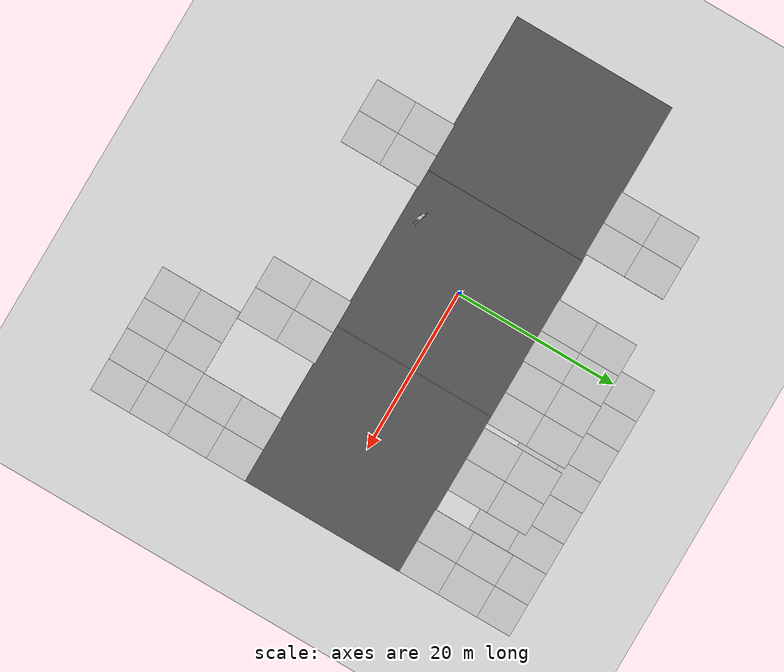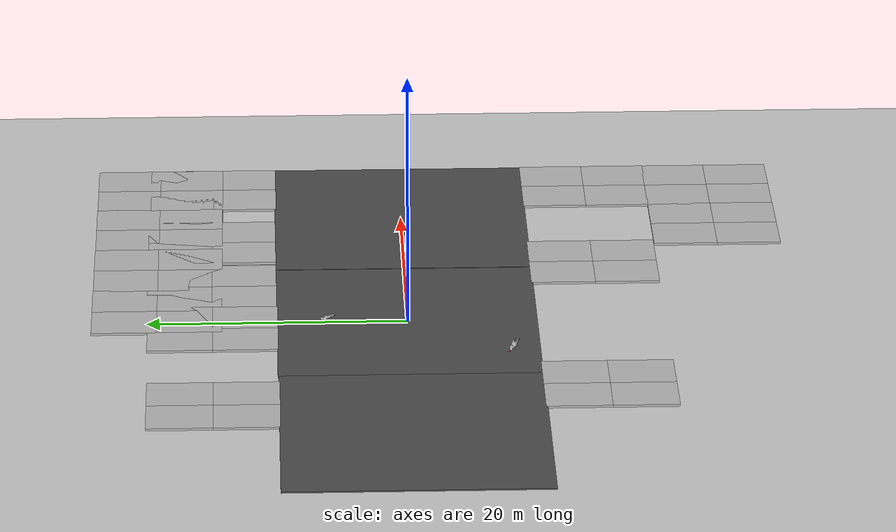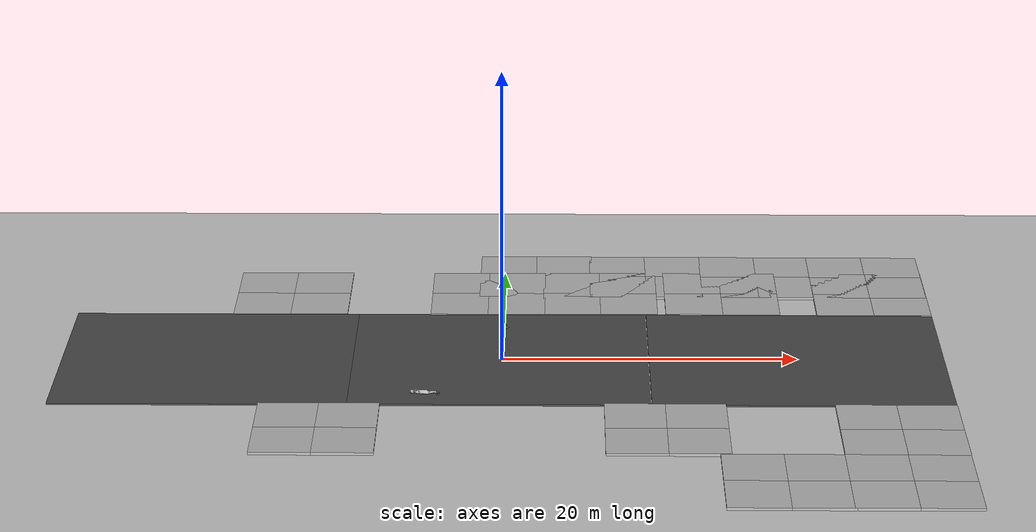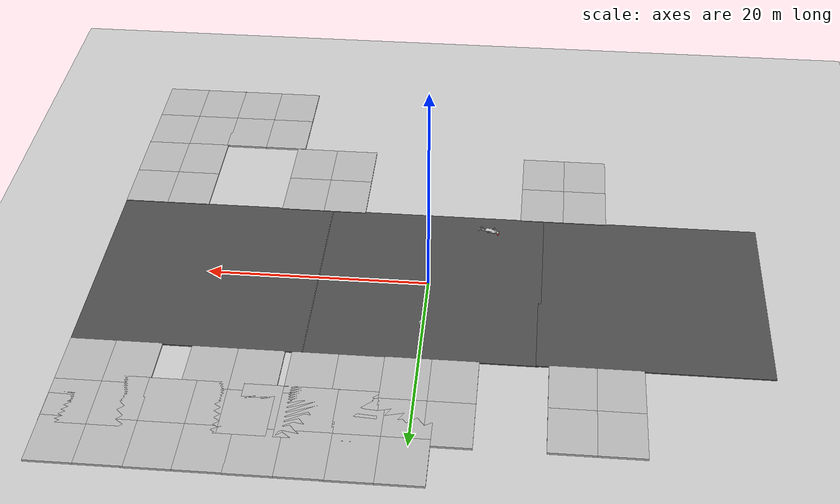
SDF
<sdf version="1.7">
 <world name="default">
  <light name="sun" type="directional">
   <pose>0 0 10 0 -0 0</pose>
   <diffuse>0.8 0.8 0.8 1</diffuse>
   <specular>0.2 0.2 0.2 1</specular>
   <attenuation>
    <range>1000</range>
    <constant>0.9</constant>
    <linear>0.01</linear>
    <quadratic>0.001</quadratic>
   </attenuation>
   <direction>-0.5 0.1 -0.9</direction>
   <spot><inner_angle>0</inner_angle><outer_angle>0</outer_angle><falloff>0</falloff></spot>
  </light>
  <model name="ground_plane">
   <static>1</static>
   <link name="link">
    <collision name="collision">
     <geometry><plane><normal>0 0 1</normal><size>100 100</size></plane></geometry>
     <surface>
      <contact><collide_bitmask>65535</collide_bitmask></contact>
      <friction><ode><mu>100</mu><mu2>50</mu2></ode></friction>
     </surface>
    </collision>
    <visual name="visual">
     <cast_shadows>0</cast_shadows>
     <geometry><plane><normal>0 0 1</normal><size>100 100</size></plane></geometry>
     <material>
      <script><uri>file://media/materials/scripts/gazebo.material</uri><name>Gazebo/Grey</name></script>
     </material>
    </visual>
   </link>
  </model>
  <gravity>0 0 -9.8</gravity>
  <magnetic_field>6e-06 2.3e-05 -4.2e-05</magnetic_field>
  <atmosphere type="adiabatic"/>
  <physics type="ode">
   <max_step_size>0.001</max_step_size>
   <real_time_factor>1</real_time_factor>
   <real_time_update_rate>1000</real_time_update_rate>
  </physics>
  <scene><ambient>0.4 0.4 0.4 1</ambient><background>0.7 0.7 0.7 1</background><shadows>1</shadows></scene>
  <audio><device>default</device></audio>
  <spherical_coordinates>
   <surface_model>EARTH_WGS84</surface_model>
   <latitude_deg>0</latitude_deg>
   <longitude_deg>0</longitude_deg>
   <elevation>0</elevation>
   <heading_deg>0</heading_deg>
  </spherical_coordinates>
  <light name="user_directional_light_0" type="directional">
   <pose>-36.339 -0.823859 1 0 -0 0</pose>
   <diffuse>0.5 0.5 0.5 1</diffuse>
   <specular>0.1 0.1 0.1 1</specular>
   <direction>0.1 0.1 -0.9</direction>
   <attenuation>
    <range>20</range>
    <constant>0.5</constant>
    <linear>0.01</linear>
    <quadratic>0.001</quadratic>
   </attenuation>
   <spot><inner_angle>0</inner_angle><outer_angle>0</outer_angle><falloff>0</falloff></spot>
  </light>
  <light name="user_directional_light_1" type="directional">
   <pose>-35.6496 -23.8904 1 0 -0 0</pose>
   <diffuse>0.5 0.5 0.5 1</diffuse>
   <specular>0.1 0.1 0.1 1</specular>
   <direction>0.1 0.1 -0.9</direction>
   <attenuation>
    <range>20</range>
    <constant>0.5</constant>
    <linear>0.01</linear>
    <quadratic>0.001</quadratic>
   </attenuation>
   <spot><inner_angle>0</inner_angle><outer_angle>0</outer_angle><falloff>0</falloff></spot>
  </light>
  <light name="user_directional_light_2" type="directional">
   <pose>-36.7118 23.8232 1 0 -0 0</pose>
   <diffuse>0.5 0.5 0.5 1</diffuse>
   <specular>0.1 0.1 0.1 1</specular>
   <direction>0.1 0.1 -0.9</direction>
   <attenuation>
    <range>20</range>
    <constant>0.5</constant>
    <linear>0.01</linear>
    <quadratic>0.001</quadratic>
   </attenuation>
   <spot><inner_angle>0</inner_angle><outer_angle>0</outer_angle><falloff>0</falloff></spot>
  </light>
  <light name="user_directional_light_3" type="directional">
   <pose>-37.7425 41.264 1 0 -0 0</pose>
   <diffuse>0.5 0.5 0.5 1</diffuse>
   <specular>0.1 0.1 0.1 1</specular>
   <direction>0.1 0.1 -0.9</direction>
   <attenuation>
    <range>20</range>
    <constant>0.5</constant>
    <linear>0.01</linear>
    <quadratic>0.001</quadratic>
   </attenuation>
   <spot><inner_angle>0</inner_angle><outer_angle>0</outer_angle><falloff>0</falloff></spot>
  </light>
  <light name="user_directional_light_4" type="directional">
   <pose>-35.2611 -40.816 1 0 -0 0</pose>
   <diffuse>0.5 0.5 0.5 1</diffuse>
   <specular>0.1 0.1 0.1 1</specular>
   <direction>0.1 0.1 -0.9</direction>
   <attenuation>
    <range>20</range>
    <constant>0.5</constant>
    <linear>0.01</linear>
    <quadratic>0.001</quadratic>
   </attenuation>
   <spot><inner_angle>0</inner_angle><outer_angle>0</outer_angle><falloff>0</falloff></spot>
  </light>
  <light name="user_directional_light_5" type="directional">
   <pose>24.3188 39.8421 1 0 -0 0</pose>
   <diffuse>0.5 0.5 0.5 1</diffuse>
   <specular>0.1 0.1 0.1 1</specular>
   <direction>0.1 0.1 -0.9</direction>
   <attenuation>
    <range>20</range>
    <constant>0.5</constant>
    <linear>0.01</linear>
    <quadratic>0.001</quadratic>
   </attenuation>
   <spot><inner_angle>0</inner_angle><outer_angle>0</outer_angle><falloff>0</falloff></spot>
  </light>
  <light name="user_directional_light_6" type="directional">
   <pose>24.445 -29.3222 1 0 -0 0</pose>
   <diffuse>0.5 0.5 0.5 1</diffuse>
   <specular>0.1 0.1 0.1 1</specular>
   <direction>0.1 0.1 -0.9</direction>
   <attenuation>
    <range>20</range>
    <constant>0.5</constant>
    <linear>0.01</linear>
    <quadratic>0.001</quadratic>
   </attenuation>
   <spot><inner_angle>0</inner_angle><outer_angle>0</outer_angle><falloff>0</falloff></spot>
  </light>
  <model name="asphalt_plane">
   <static>1</static>
   <link name="link">
    <collision name="collision"><geometry><box><size>20 20 0.1</size></box></geometry></collision>
    <visual name="visual">
     <cast_shadows>0</cast_shadows>
     <geometry><box><size>20 20 0.1</size></box></geometry>
     <material>
      <script>
       <uri>model://asphalt_plane/materials/scripts</uri>
       <uri>model://asphalt_plane/materials/textures</uri>
       <name>vrc/asphalt</name>
      </script>
     </material>
    </visual>
   </link>
   <pose>-0.105189 0.034839 0 0 -0 0</pose>
  </model>
  <model name="asphalt_plane_0">
   <static>1</static>
   <link name="link">
    <collision name="collision"><geometry><box><size>20 20 0.1</size></box></geometry></collision>
    <visual name="visual">
     <cast_shadows>0</cast_shadows>
     <geometry><box><size>20 20 0.1</size></box></geometry>
     <material>
      <script>
       <uri>model://asphalt_plane/materials/scripts</uri>
       <uri>model://asphalt_plane/materials/textures</uri>
       <name>vrc/asphalt</name>
      </script>
     </material>
    </visual>
   </link>
   <pose>19.9584 0.020413 0 0 -0 0</pose>
  </model>
  <model name="asphalt_plane_1">
   <static>1</static>
   <link name="link">
    <collision name="collision"><geometry><box><size>20 20 0.1</size></box></geometry></collision>
    <visual name="visual">
     <cast_shadows>0</cast_shadows>
     <geometry><box><size>20 20 0.1</size></box></geometry>
     <material>
      <script>
       <uri>model://asphalt_plane/materials/scripts</uri>
       <uri>model://asphalt_plane/materials/textures</uri>
       <name>vrc/asphalt</name>
      </script>
     </material>
    </visual>
   </link>
   <pose>-19.8343 -0.008116 0 0 -0 0</pose>
  </model>
  <model name="mud_box">
   <static>1</static>
   <link name="link">
    <collision name="collision"><geometry><box><size>8 10 0.2</size></box></geometry></collision>
    <visual name="visual_1">
     <pose>-2 2.5 0 0 -0 0</pose>
     <cast_shadows>0</cast_shadows>
     <geometry><box><size>4 5 0.2</size></box></geometry>
     <material>
      <script>
       <uri>model://mud_box/materials/scripts</uri>
       <uri>model://mud_box/materials/textures</uri>
       <name>vrc/mud</name>
      </script>
     </material>
    </visual>
    <visual name="visual_2">
     <pose>2 2.5 0 0 -0 0</pose>
     <cast_shadows>0</cast_shadows>
     <geometry><box><size>4 5 0.2</size></box></geometry>
     <material>
      <script>
       <uri>model://mud_box/materials/scripts</uri>
       <uri>model://mud_box/materials/textures</uri>
       <name>vrc/mud</name>
      </script>
     </material>
    </visual>
    <visual name="visual_3">
     <pose>2 -2.5 0 0 -0 0</pose>
     <cast_shadows>0</cast_shadows>
     <geometry><box><size>4 5 0.2</size></box></geometry>
     <material>
      <script>
       <uri>model://mud_box/materials/scripts</uri>
       <uri>model://mud_box/materials/textures</uri>
       <name>vrc/mud</name>
      </script>
     </material>
    </visual>
    <visual name="visual_4">
     <pose>-2 -2.5 0 0 -0 0</pose>
     <cast_shadows>0</cast_shadows>
     <geometry><box><size>4 5 0.2</size></box></geometry>
     <material>
      <script>
       <uri>model://mud_box/materials/scripts</uri>
       <uri>model://mud_box/materials/textures</uri>
       <name>vrc/mud</name>
      </script>
     </material>
    </visual>
   </link>
   <pose>25.9649 -14.9076 0 0 -0 0</pose>
  </model>
  <model name="mud_box_0">
   <static>1</static>
   <link name="link">
    <collision name="collision"><geometry><box><size>8 10 0.2</size></box></geometry></collision>
    <visual name="visual_1">
     <pose>-2 2.5 0 0 -0 0</pose>
     <cast_shadows>0</cast_shadows>
     <geometry><box><size>4 5 0.2</size></box></geometry>
     <material>
      <script>
       <uri>model://mud_box/materials/scripts</uri>
       <uri>model://mud_box/materials/textures</uri>
       <name>vrc/mud</name>
      </script>
     </material>
    </visual>
    <visual name="visual_2">
     <pose>2 2.5 0 0 -0 0</pose>
     <cast_shadows>0</cast_shadows>
     <geometry><box><size>4 5 0.2</size></box></geometry>
     <material>
      <script>
       <uri>model://mud_box/materials/scripts</uri>
       <uri>model://mud_box/materials/textures</uri>
       <name>vrc/mud</name>
      </script>
     </material>
    </visual>
    <visual name="visual_3">
     <pose>2 -2.5 0 0 -0 0</pose>
     <cast_shadows>0</cast_shadows>
     <geometry><box><size>4 5 0.2</size></box></geometry>
     <material>
      <script>
       <uri>model://mud_box/materials/scripts</uri>
       <uri>model://mud_box/materials/textures</uri>
       <name>vrc/mud</name>
      </script>
     </material>
    </visual>
    <visual name="visual_4">
     <pose>-2 -2.5 0 0 -0 0</pose>
     <cast_shadows>0</cast_shadows>
     <geometry><box><size>4 5 0.2</size></box></geometry>
     <material>
      <script>
       <uri>model://mud_box/materials/scripts</uri>
       <uri>model://mud_box/materials/textures</uri>
       <name>vrc/mud</name>
      </script>
     </material>
    </visual>
   </link>
   <pose>25.934 -24.8471 0 0 -0 0</pose>
  </model>
  <model name="mud_box_1">
   <static>1</static>
   <link name="link">
    <collision name="collision"><geometry><box><size>8 10 0.2</size></box></geometry></collision>
    <visual name="visual_1">
     <pose>-2 2.5 0 0 -0 0</pose>
     <cast_shadows>0</cast_shadows>
     <geometry><box><size>4 5 0.2</size></box></geometry>
     <material>
      <script>
       <uri>model://mud_box/materials/scripts</uri>
       <uri>model://mud_box/materials/textures</uri>
       <name>vrc/mud</name>
      </script>
     </material>
    </visual>
    <visual name="visual_2">
     <pose>2 2.5 0 0 -0 0</pose>
     <cast_shadows>0</cast_shadows>
     <geometry><box><size>4 5 0.2</size></box></geometry>
     <material>
      <script>
       <uri>model://mud_box/materials/scripts</uri>
       <uri>model://mud_box/materials/textures</uri>
       <name>vrc/mud</name>
      </script>
     </material>
    </visual>
    <visual name="visual_3">
     <pose>2 -2.5 0 0 -0 0</pose>
     <cast_shadows>0</cast_shadows>
     <geometry><box><size>4 5 0.2</size></box></geometry>
     <material>
      <script>
       <uri>model://mud_box/materials/scripts</uri>
       <uri>model://mud_box/materials/textures</uri>
       <name>vrc/mud</name>
      </script>
     </material>
    </visual>
    <visual name="visual_4">
     <pose>-2 -2.5 0 0 -0 0</pose>
     <cast_shadows>0</cast_shadows>
     <geometry><box><size>4 5 0.2</size></box></geometry>
     <material>
      <script>
       <uri>model://mud_box/materials/scripts</uri>
       <uri>model://mud_box/materials/textures</uri>
       <name>vrc/mud</name>
      </script>
     </material>
    </visual>
   </link>
   <pose>25.9392 14.924 0 0 -0 0</pose>
  </model>
  <model name="mud_box_2">
   <static>1</static>
   <link name="link">
    <collision name="collision"><geometry><box><size>8 10 0.2</size></box></geometry></collision>
    <visual name="visual_1">
     <pose>-2 2.5 0 0 -0 0</pose>
     <cast_shadows>0</cast_shadows>
     <geometry><box><size>4 5 0.2</size></box></geometry>
     <material>
      <script>
       <uri>model://mud_box/materials/scripts</uri>
       <uri>model://mud_box/materials/textures</uri>
       <name>vrc/mud</name>
      </script>
     </material>
    </visual>
    <visual name="visual_2">
     <pose>2 2.5 0 0 -0 0</pose>
     <cast_shadows>0</cast_shadows>
     <geometry><box><size>4 5 0.2</size></box></geometry>
     <material>
      <script>
       <uri>model://mud_box/materials/scripts</uri>
       <uri>model://mud_box/materials/textures</uri>
       <name>vrc/mud</name>
      </script>
     </material>
    </visual>
    <visual name="visual_3">
     <pose>2 -2.5 0 0 -0 0</pose>
     <cast_shadows>0</cast_shadows>
     <geometry><box><size>4 5 0.2</size></box></geometry>
     <material>
      <script>
       <uri>model://mud_box/materials/scripts</uri>
       <uri>model://mud_box/materials/textures</uri>
       <name>vrc/mud</name>
      </script>
     </material>
    </visual>
    <visual name="visual_4">
     <pose>-2 -2.5 0 0 -0 0</pose>
     <cast_shadows>0</cast_shadows>
     <geometry><box><size>4 5 0.2</size></box></geometry>
     <material>
      <script>
       <uri>model://mud_box/materials/scripts</uri>
       <uri>model://mud_box/materials/textures</uri>
       <name>vrc/mud</name>
      </script>
     </material>
    </visual>
   </link>
   <pose>6.78553 15.0265 0 0 -0 0</pose>
  </model>
  <model name="mud_box_3">
   <static>1</static>
   <link name="link">
    <collision name="collision"><geometry><box><size>8 10 0.2</size></box></geometry></collision>
    <visual name="visual_1">
     <pose>-2 2.5 0 0 -0 0</pose>
     <cast_shadows>0</cast_shadows>
     <geometry><box><size>4 5 0.2</size></box></geometry>
     <material>
      <script>
       <uri>model://mud_box/materials/scripts</uri>
       <uri>model://mud_box/materials/textures</uri>
       <name>vrc/mud</name>
      </script>
     </material>
    </visual>
    <visual name="visual_2">
     <pose>2 2.5 0 0 -0 0</pose>
     <cast_shadows>0</cast_shadows>
     <geometry><box><size>4 5 0.2</size></box></geometry>
     <material>
      <script>
       <uri>model://mud_box/materials/scripts</uri>
       <uri>model://mud_box/materials/textures</uri>
       <name>vrc/mud</name>
      </script>
     </material>
    </visual>
    <visual name="visual_3">
     <pose>2 -2.5 0 0 -0 0</pose>
     <cast_shadows>0</cast_shadows>
     <geometry><box><size>4 5 0.2</size></box></geometry>
     <material>
      <script>
       <uri>model://mud_box/materials/scripts</uri>
       <uri>model://mud_box/materials/textures</uri>
       <name>vrc/mud</name>
      </script>
     </material>
    </visual>
    <visual name="visual_4">
     <pose>-2 -2.5 0 0 -0 0</pose>
     <cast_shadows>0</cast_shadows>
     <geometry><box><size>4 5 0.2</size></box></geometry>
     <material>
      <script>
       <uri>model://mud_box/materials/scripts</uri>
       <uri>model://mud_box/materials/textures</uri>
       <name>vrc/mud</name>
      </script>
     </material>
    </visual>
   </link>
   <pose>15.3638 15.0236 0 0 -0 0</pose>
  </model>
  <model name="mud_box_4">
   <static>1</static>
   <link name="link">
    <collision name="collision"><geometry><box><size>8 10 0.2</size></box></geometry></collision>
    <visual name="visual_1">
     <pose>-2 2.5 0 0 -0 0</pose>
     <cast_shadows>0</cast_shadows>
     <geometry><box><size>4 5 0.2</size></box></geometry>
     <material>
      <script>
       <uri>model://mud_box/materials/scripts</uri>
       <uri>model://mud_box/materials/textures</uri>
       <name>vrc/mud</name>
      </script>
     </material>
    </visual>
    <visual name="visual_2">
     <pose>2 2.5 0 0 -0 0</pose>
     <cast_shadows>0</cast_shadows>
     <geometry><box><size>4 5 0.2</size></box></geometry>
     <material>
      <script>
       <uri>model://mud_box/materials/scripts</uri>
       <uri>model://mud_box/materials/textures</uri>
       <name>vrc/mud</name>
      </script>
     </material>
    </visual>
    <visual name="visual_3">
     <pose>2 -2.5 0 0 -0 0</pose>
     <cast_shadows>0</cast_shadows>
     <geometry><box><size>4 5 0.2</size></box></geometry>
     <material>
      <script>
       <uri>model://mud_box/materials/scripts</uri>
       <uri>model://mud_box/materials/textures</uri>
       <name>vrc/mud</name>
      </script>
     </material>
    </visual>
    <visual name="visual_4">
     <pose>-2 -2.5 0 0 -0 0</pose>
     <cast_shadows>0</cast_shadows>
     <geometry><box><size>4 5 0.2</size></box></geometry>
     <material>
      <script>
       <uri>model://mud_box/materials/scripts</uri>
       <uri>model://mud_box/materials/textures</uri>
       <name>vrc/mud</name>
      </script>
     </material>
    </visual>
   </link>
   <pose>-1.10625 14.9618 0 0 -0 0</pose>
  </model>
  <model name="mud_box_5">
   <static>1</static>
   <link name="link">
    <collision name="collision"><geometry><box><size>8 10 0.2</size></box></geometry></collision>
    <visual name="visual_1">
     <pose>-2 2.5 0 0 -0 0</pose>
     <cast_shadows>0</cast_shadows>
     <geometry><box><size>4 5 0.2</size></box></geometry>
     <material>
      <script>
       <uri>model://mud_box/materials/scripts</uri>
       <uri>model://mud_box/materials/textures</uri>
       <name>vrc/mud</name>
      </script>
     </material>
    </visual>
    <visual name="visual_2">
     <pose>2 2.5 0 0 -0 0</pose>
     <cast_shadows>0</cast_shadows>
     <geometry><box><size>4 5 0.2</size></box></geometry>
     <material>
      <script>
       <uri>model://mud_box/materials/scripts</uri>
       <uri>model://mud_box/materials/textures</uri>
       <name>vrc/mud</name>
      </script>
     </material>
    </visual>
    <visual name="visual_3">
     <pose>2 -2.5 0 0 -0 0</pose>
     <cast_shadows>0</cast_shadows>
     <geometry><box><size>4 5 0.2</size></box></geometry>
     <material>
      <script>
       <uri>model://mud_box/materials/scripts</uri>
       <uri>model://mud_box/materials/textures</uri>
       <name>vrc/mud</name>
      </script>
     </material>
    </visual>
    <visual name="visual_4">
     <pose>-2 -2.5 0 0 -0 0</pose>
     <cast_shadows>0</cast_shadows>
     <geometry><box><size>4 5 0.2</size></box></geometry>
     <material>
      <script>
       <uri>model://mud_box/materials/scripts</uri>
       <uri>model://mud_box/materials/textures</uri>
       <name>vrc/mud</name>
      </script>
     </material>
    </visual>
   </link>
   <pose>18.0848 -24.8671 0 0 -0 0</pose>
  </model>
  <model name="mud_box_6">
   <static>1</static>
   <link name="link">
    <collision name="collision"><geometry><box><size>8 10 0.2</size></box></geometry></collision>
    <visual name="visual_1">
     <pose>-2 2.5 0 0 -0 0</pose>
     <cast_shadows>0</cast_shadows>
     <geometry><box><size>4 5 0.2</size></box></geometry>
     <material>
      <script>
       <uri>model://mud_box/materials/scripts</uri>
       <uri>model://mud_box/materials/textures</uri>
       <name>vrc/mud</name>
      </script>
     </material>
    </visual>
    <visual name="visual_2">
     <pose>2 2.5 0 0 -0 0</pose>
     <cast_shadows>0</cast_shadows>
     <geometry><box><size>4 5 0.2</size></box></geometry>
     <material>
      <script>
       <uri>model://mud_box/materials/scripts</uri>
       <uri>model://mud_box/materials/textures</uri>
       <name>vrc/mud</name>
      </script>
     </material>
    </visual>
    <visual name="visual_3">
     <pose>2 -2.5 0 0 -0 0</pose>
     <cast_shadows>0</cast_shadows>
     <geometry><box><size>4 5 0.2</size></box></geometry>
     <material>
      <script>
       <uri>model://mud_box/materials/scripts</uri>
       <uri>model://mud_box/materials/textures</uri>
       <name>vrc/mud</name>
      </script>
     </material>
    </visual>
    <visual name="visual_4">
     <pose>-2 -2.5 0 0 -0 0</pose>
     <cast_shadows>0</cast_shadows>
     <geometry><box><size>4 5 0.2</size></box></geometry>
     <material>
      <script>
       <uri>model://mud_box/materials/scripts</uri>
       <uri>model://mud_box/materials/textures</uri>
       <name>vrc/mud</name>
      </script>
     </material>
    </visual>
   </link>
   <pose>25.9179 19.159 0 0 -0 0</pose>
  </model>
  <model name="mud_box_7">
   <static>1</static>
   <link name="link">
    <collision name="collision"><geometry><box><size>8 10 0.2</size></box></geometry></collision>
    <visual name="visual_1">
     <pose>-2 2.5 0 0 -0 0</pose>
     <cast_shadows>0</cast_shadows>
     <geometry><box><size>4 5 0.2</size></box></geometry>
     <material>
      <script>
       <uri>model://mud_box/materials/scripts</uri>
       <uri>model://mud_box/materials/textures</uri>
       <name>vrc/mud</name>
      </script>
     </material>
    </visual>
    <visual name="visual_2">
     <pose>2 2.5 0 0 -0 0</pose>
     <cast_shadows>0</cast_shadows>
     <geometry><box><size>4 5 0.2</size></box></geometry>
     <material>
      <script>
       <uri>model://mud_box/materials/scripts</uri>
       <uri>model://mud_box/materials/textures</uri>
       <name>vrc/mud</name>
      </script>
     </material>
    </visual>
    <visual name="visual_3">
     <pose>2 -2.5 0 0 -0 0</pose>
     <cast_shadows>0</cast_shadows>
     <geometry><box><size>4 5 0.2</size></box></geometry>
     <material>
      <script>
       <uri>model://mud_box/materials/scripts</uri>
       <uri>model://mud_box/materials/textures</uri>
       <name>vrc/mud</name>
      </script>
     </material>
    </visual>
    <visual name="visual_4">
     <pose>-2 -2.5 0 0 -0 0</pose>
     <cast_shadows>0</cast_shadows>
     <geometry><box><size>4 5 0.2</size></box></geometry>
     <material>
      <script>
       <uri>model://mud_box/materials/scripts</uri>
       <uri>model://mud_box/materials/textures</uri>
       <name>vrc/mud</name>
      </script>
     </material>
    </visual>
   </link>
   <pose>18.0637 19.1879 0 0 -0 0</pose>
  </model>
  <model name="mud_box_8">
   <static>1</static>
   <link name="link">
    <collision name="collision"><geometry><box><size>8 10 0.2</size></box></geometry></collision>
    <visual name="visual_1">
     <pose>-2 2.5 0 0 -0 0</pose>
     <cast_shadows>0</cast_shadows>
     <geometry><box><size>4 5 0.2</size></box></geometry>
     <material>
      <script>
       <uri>model://mud_box/materials/scripts</uri>
       <uri>model://mud_box/materials/textures</uri>
       <name>vrc/mud</name>
      </script>
     </material>
    </visual>
    <visual name="visual_2">
     <pose>2 2.5 0 0 -0 0</pose>
     <cast_shadows>0</cast_shadows>
     <geometry><box><size>4 5 0.2</size></box></geometry>
     <material>
      <script>
       <uri>model://mud_box/materials/scripts</uri>
       <uri>model://mud_box/materials/textures</uri>
       <name>vrc/mud</name>
      </script>
     </material>
    </visual>
    <visual name="visual_3">
     <pose>2 -2.5 0 0 -0 0</pose>
     <cast_shadows>0</cast_shadows>
     <geometry><box><size>4 5 0.2</size></box></geometry>
     <material>
      <script>
       <uri>model://mud_box/materials/scripts</uri>
       <uri>model://mud_box/materials/textures</uri>
       <name>vrc/mud</name>
      </script>
     </material>
    </visual>
    <visual name="visual_4">
     <pose>-2 -2.5 0 0 -0 0</pose>
     <cast_shadows>0</cast_shadows>
     <geometry><box><size>4 5 0.2</size></box></geometry>
     <material>
      <script>
       <uri>model://mud_box/materials/scripts</uri>
       <uri>model://mud_box/materials/textures</uri>
       <name>vrc/mud</name>
      </script>
     </material>
    </visual>
   </link>
   <pose>10.1051 19.2223 0 0 -0 0</pose>
  </model>
  <model name="mud_box_9">
   <static>1</static>
   <link name="link">
    <collision name="collision"><geometry><box><size>8 10 0.2</size></box></geometry></collision>
    <visual name="visual_1">
     <pose>-2 2.5 0 0 -0 0</pose>
     <cast_shadows>0</cast_shadows>
     <geometry><box><size>4 5 0.2</size></box></geometry>
     <material>
      <script>
       <uri>model://mud_box/materials/scripts</uri>
       <uri>model://mud_box/materials/textures</uri>
       <name>vrc/mud</name>
      </script>
     </material>
    </visual>
    <visual name="visual_2">
     <pose>2 2.5 0 0 -0 0</pose>
     <cast_shadows>0</cast_shadows>
     <geometry><box><size>4 5 0.2</size></box></geometry>
     <material>
      <script>
       <uri>model://mud_box/materials/scripts</uri>
       <uri>model://mud_box/materials/textures</uri>
       <name>vrc/mud</name>
      </script>
     </material>
    </visual>
    <visual name="visual_3">
     <pose>2 -2.5 0 0 -0 0</pose>
     <cast_shadows>0</cast_shadows>
     <geometry><box><size>4 5 0.2</size></box></geometry>
     <material>
      <script>
       <uri>model://mud_box/materials/scripts</uri>
       <uri>model://mud_box/materials/textures</uri>
       <name>vrc/mud</name>
      </script>
     </material>
    </visual>
    <visual name="visual_4">
     <pose>-2 -2.5 0 0 -0 0</pose>
     <cast_shadows>0</cast_shadows>
     <geometry><box><size>4 5 0.2</size></box></geometry>
     <material>
      <script>
       <uri>model://mud_box/materials/scripts</uri>
       <uri>model://mud_box/materials/textures</uri>
       <name>vrc/mud</name>
      </script>
     </material>
    </visual>
   </link>
   <pose>2.25086 19.2503 0 0 -0 0</pose>
  </model>
  <model name="mud_box_10">
   <static>1</static>
   <link name="link">
    <collision name="collision"><geometry><box><size>8 10 0.2</size></box></geometry></collision>
    <visual name="visual_1">
     <pose>-2 2.5 0 0 -0 0</pose>
     <cast_shadows>0</cast_shadows>
     <geometry><box><size>4 5 0.2</size></box></geometry>
     <material>
      <script>
       <uri>model://mud_box/materials/scripts</uri>
       <uri>model://mud_box/materials/textures</uri>
       <name>vrc/mud</name>
      </script>
     </material>
    </visual>
    <visual name="visual_2">
     <pose>2 2.5 0 0 -0 0</pose>
     <cast_shadows>0</cast_shadows>
     <geometry><box><size>4 5 0.2</size></box></geometry>
     <material>
      <script>
       <uri>model://mud_box/materials/scripts</uri>
       <uri>model://mud_box/materials/textures</uri>
       <name>vrc/mud</name>
      </script>
     </material>
    </visual>
    <visual name="visual_3">
     <pose>2 -2.5 0 0 -0 0</pose>
     <cast_shadows>0</cast_shadows>
     <geometry><box><size>4 5 0.2</size></box></geometry>
     <material>
      <script>
       <uri>model://mud_box/materials/scripts</uri>
       <uri>model://mud_box/materials/textures</uri>
       <name>vrc/mud</name>
      </script>
     </material>
    </visual>
    <visual name="visual_4">
     <pose>-2 -2.5 0 0 -0 0</pose>
     <cast_shadows>0</cast_shadows>
     <geometry><box><size>4 5 0.2</size></box></geometry>
     <material>
      <script>
       <uri>model://mud_box/materials/scripts</uri>
       <uri>model://mud_box/materials/textures</uri>
       <name>vrc/mud</name>
      </script>
     </material>
    </visual>
   </link>
   <pose>-11.9214 -14.862 0 0 -0 0</pose>
  </model>
  <model name="mud_box_11">
   <static>1</static>
   <link name="link">
    <collision name="collision"><geometry><box><size>8 10 0.2</size></box></geometry></collision>
    <visual name="visual_1">
     <pose>-2 2.5 0 0 -0 0</pose>
     <cast_shadows>0</cast_shadows>
     <geometry><box><size>4 5 0.2</size></box></geometry>
     <material>
      <script>
       <uri>model://mud_box/materials/scripts</uri>
       <uri>model://mud_box/materials/textures</uri>
       <name>vrc/mud</name>
      </script>
     </material>
    </visual>
    <visual name="visual_2">
     <pose>2 2.5 0 0 -0 0</pose>
     <cast_shadows>0</cast_shadows>
     <geometry><box><size>4 5 0.2</size></box></geometry>
     <material>
      <script>
       <uri>model://mud_box/materials/scripts</uri>
       <uri>model://mud_box/materials/textures</uri>
       <name>vrc/mud</name>
      </script>
     </material>
    </visual>
    <visual name="visual_3">
     <pose>2 -2.5 0 0 -0 0</pose>
     <cast_shadows>0</cast_shadows>
     <geometry><box><size>4 5 0.2</size></box></geometry>
     <material>
      <script>
       <uri>model://mud_box/materials/scripts</uri>
       <uri>model://mud_box/materials/textures</uri>
       <name>vrc/mud</name>
      </script>
     </material>
    </visual>
    <visual name="visual_4">
     <pose>-2 -2.5 0 0 -0 0</pose>
     <cast_shadows>0</cast_shadows>
     <geometry><box><size>4 5 0.2</size></box></geometry>
     <material>
      <script>
       <uri>model://mud_box/materials/scripts</uri>
       <uri>model://mud_box/materials/textures</uri>
       <name>vrc/mud</name>
      </script>
     </material>
    </visual>
   </link>
   <pose>-14.9445 14.9 0 0 -0 0</pose>
  </model>
  <model name="kumaeye">
   <link name="link">
    <inertial>
     <pose>0 -0.1 0.95 0 -0 0</pose>
     <mass>80</mass>
     <inertia><ixx>24.88</ixx><ixy>0</ixy><ixz>0</ixz><iyy>25.73</iyy><iyz>0</iyz><izz>2.48</izz></inertia>
    </inertial>
    <collision name="bottom">
     <pose>0 0 0.01 0 -0 1.57</pose>
     <geometry><box><size>0.5 0.35 0.02</size></box></geometry>
    </collision>
    <collision name="person">
     <pose>0 0 0.02 0 -0 1.57</pose>
     <geometry><mesh><uri>model://kumaeye/meshes/kumaeyev2.dae</uri></mesh></geometry>
    </collision>
    <visual name="visual">
     <pose>0 0 0.02 0 -0 1.57</pose>
     <geometry><mesh><uri>model://kumaeye/meshes/kumaeyev2.dae</uri></mesh></geometry>
    </visual>
   </link>
   <pose>0.301861 5.61609 0.524702 1.86694 0.098963 -2.74284</pose>
  </model>
  <model name="gertrudiseye">
   <link name="link">
    <inertial>
     <pose>0 -0.1 0.95 0 -0 0</pose>
     <mass>80</mass>
     <inertia><ixx>24.88</ixx><ixy>0</ixy><ixz>0</ixz><iyy>25.73</iyy><iyz>0</iyz><izz>2.48</izz></inertia>
    </inertial>
    <collision name="bottom">
     <pose>0 0 0.01 0 -0 1.57</pose>
     <geometry><box><size>0.5 0.35 0.02</size></box></geometry>
    </collision>
    <collision name="person">
     <pose>0 0 0.02 0 -0 1.57</pose>
     <geometry><mesh><uri>model://gertrudiseye/meshes/gertrudiseyev2.dae</uri></mesh></geometry>
    </collision>
    <visual name="visual">
     <pose>0 0 0.02 0 -0 1.57</pose>
     <geometry><mesh><uri>model://gertrudiseye/meshes/gertrudiseyev2.dae</uri></mesh></geometry>
    </visual>
   </link>
   <pose>-4.15471 -8.29413 0.249 -1.79306 1.47121 1.00295</pose>
  </model>
  <model name="blood">
   <link name="link">
    <inertial>
     <mass>1</mass>
     <inertia><ixx>0.145833</ixx><ixy>0</ixy><ixz>0</ixz><iyy>0.145833</iyy><iyz>0</iyz><izz>0.125</izz></inertia>
    </inertial>
    <visual name="visual">
     <geometry><cylinder><radius>0.1</radius><length>0.01</length></cylinder></geometry>
     <material>
      <script><name>Gazebo/Red</name><uri>file://media/materials/scripts/gazebo.material</uri></script>
      <shader type="pixel"><normal_map>__default__</normal_map></shader>
      <ambient>0.3 0 0 1</ambient>
      <diffuse>0.7 0 0 1</diffuse>
      <specular>0.01 0.01 0.01 1</specular>
      <emissive>0 0 0 1</emissive>
     </material>
    </visual>
    <collision name="collision">
     <geometry><cylinder><radius>0.1</radius><length>0.01</length></cylinder></geometry>
     <surface>
      <friction>
       <ode><mu>1</mu><mu2>1</mu2><fdir1>0 0 0</fdir1><slip1>0</slip1><slip2>0</slip2></ode>
       <torsional>
        <coefficient>1</coefficient>
        <patch_radius>0</patch_radius>
        <surface_radius>0</surface_radius>
        <use_patch_radius>1</use_patch_radius>
        <ode><slip>0</slip></ode>
       </torsional>
      </friction>
      <bounce><restitution_coefficient>0</restitution_coefficient><threshold>1e+06</threshold></bounce>
      <contact>
       <collide_without_contact>0</collide_without_contact>
       <collide_without_contact_bitmask>1</collide_without_contact_bitmask>
       <collide_bitmask>1</collide_bitmask>
       <ode>
        <soft_cfm>0</soft_cfm>
        <soft_erp>0.2</soft_erp>
        <kp>1e+13</kp>
        <kd>1</kd>
        <max_vel>0.01</max_vel>
        <min_depth>0</min_depth>
       </ode>
       <bullet>
        <split_impulse>1</split_impulse>
        <split_impulse_penetration_threshold>-0.01</split_impulse_penetration_threshold>
        <soft_cfm>0</soft_cfm>
        <soft_erp>0.2</soft_erp>
        <kp>1e+13</kp>
        <kd>1</kd>
       </bullet>
      </contact>
     </surface>
    </collision>
   </link>
   <static>0</static>
   <pose>-5.89813 -7.57419 0.054995 1.5e-05 -4.3e-05 -0.034404</pose>
  </model>
  <model name="mud_box_12">
   <static>1</static>
   <link name="link">
    <collision name="collision"><geometry><box><size>8 10 0.2</size></box></geometry></collision>
    <visual name="visual_1">
     <pose>-2 2.5 0 0 -0 0</pose>
     <cast_shadows>0</cast_shadows>
     <geometry><box><size>4 5 0.2</size></box></geometry>
     <material>
      <script>
       <uri>model://mud_box/materials/scripts</uri>
       <uri>model://mud_box/materials/textures</uri>
       <name>vrc/mud</name>
      </script>
     </material>
    </visual>
    <visual name="visual_2">
     <pose>2 2.5 0 0 -0 0</pose>
     <cast_shadows>0</cast_shadows>
     <geometry><box><size>4 5 0.2</size></box></geometry>
     <material>
      <script>
       <uri>model://mud_box/materials/scripts</uri>
       <uri>model://mud_box/materials/textures</uri>
       <name>vrc/mud</name>
      </script>
     </material>
    </visual>
    <visual name="visual_3">
     <pose>2 -2.5 0 0 -0 0</pose>
     <cast_shadows>0</cast_shadows>
     <geometry><box><size>4 5 0.2</size></box></geometry>
     <material>
      <script>
       <uri>model://mud_box/materials/scripts</uri>
       <uri>model://mud_box/materials/textures</uri>
       <name>vrc/mud</name>
      </script>
     </material>
    </visual>
    <visual name="visual_4">
     <pose>-2 -2.5 0 0 -0 0</pose>
     <cast_shadows>0</cast_shadows>
     <geometry><box><size>4 5 0.2</size></box></geometry>
     <material>
      <script>
       <uri>model://mud_box/materials/scripts</uri>
       <uri>model://mud_box/materials/textures</uri>
       <name>vrc/mud</name>
      </script>
     </material>
    </visual>
   </link>
   <pose>10.8165 -14.8217 0 0 -0 0</pose>
  </model>
 </world>
</sdf>
